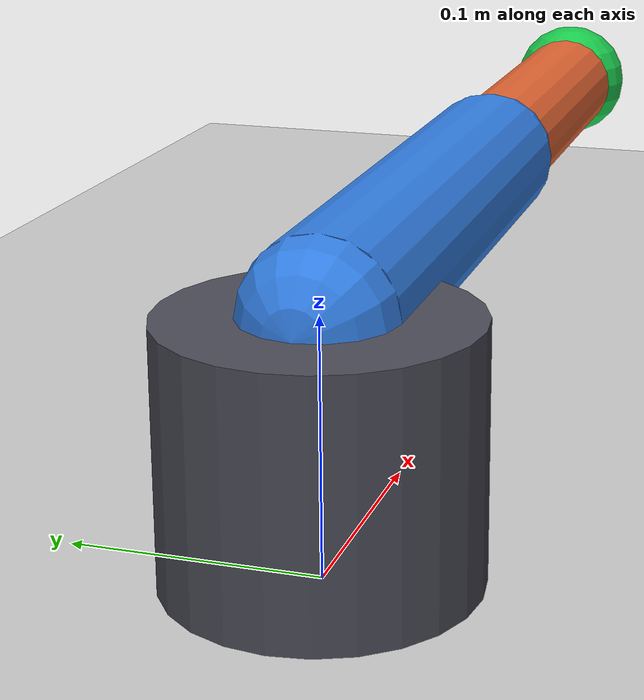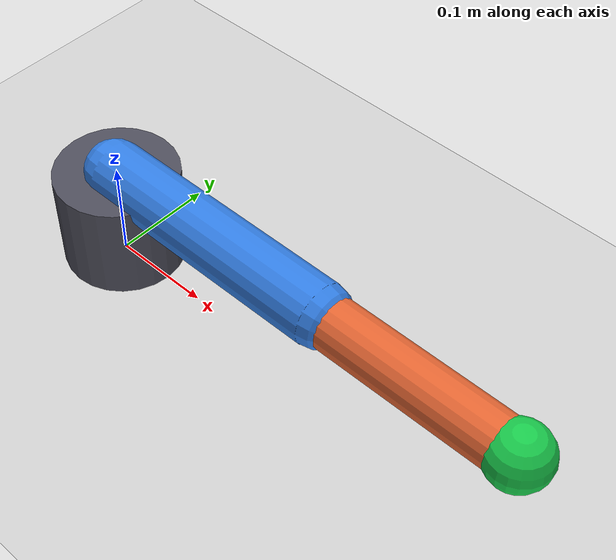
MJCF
<!--
  RobeWhisper 内置教学用二自由度平面臂（阶段 1）
  说明：自包含 MJCF，无外部 mesh/贴图依赖，便于本机可靠加载。
  几何与关节定义为常见公开教学结构，非商业 CAD 逆向。
-->
<mujoco model="builtin_arm2">
  <compiler angle="radian" coordinate="local"/>
  <option timestep="0.002" gravity="0 0 -9.81"/>

  <worldbody>
    <light pos="0 0 2" dir="0 0 -1"/>
    <geom name="floor" type="plane" size="1 1 0.05" rgba="0.8 0.8 0.8 1"/>

    <!-- 基座 -->
    <body name="base" pos="0 0 0.05">
      <geom name="base_geom" type="cylinder" size="0.06 0.05" rgba="0.3 0.3 0.35 1"/>

      <!-- 连杆 1 -->
      <body name="link1" pos="0 0 0.05">
        <joint name="joint1" type="hinge" axis="0 0 1" range="-2.8 2.8" damping="0.5"/>
        <geom name="link1_geom" type="capsule" fromto="0 0 0 0.25 0 0" size="0.03" rgba="0.2 0.5 0.9 1" mass="1.0"/>

        <!-- 连杆 2 -->
        <body name="link2" pos="0.25 0 0">
          <joint name="joint2" type="hinge" axis="0 0 1" range="-2.5 2.5" damping="0.4"/>
          <geom name="link2_geom" type="capsule" fromto="0 0 0 0.2 0 0" size="0.025" rgba="0.9 0.4 0.2 1" mass="0.6"/>
          <geom name="ee" type="sphere" pos="0.2 0 0" size="0.03" rgba="0.1 0.8 0.3 1" mass="0.05"/>
        </body>
      </body>
    </body>
  </worldbody>

  <actuator>
    <position name="act_joint1" joint="joint1" kp="40" ctrlrange="-2.8 2.8"/>
    <position name="act_joint2" joint="joint2" kp="30" ctrlrange="-2.5 2.5"/>
  </actuator>
</mujoco>
